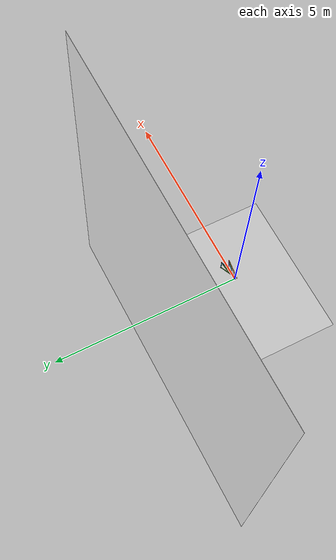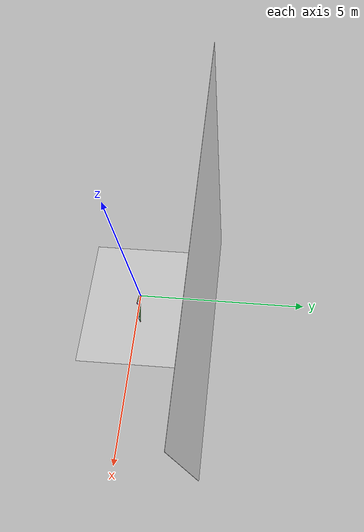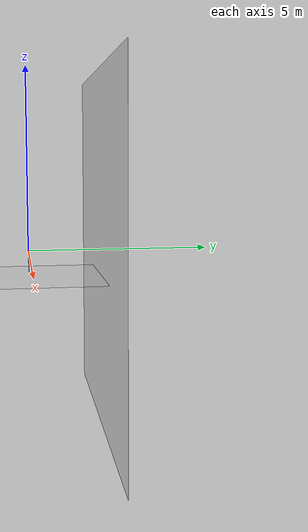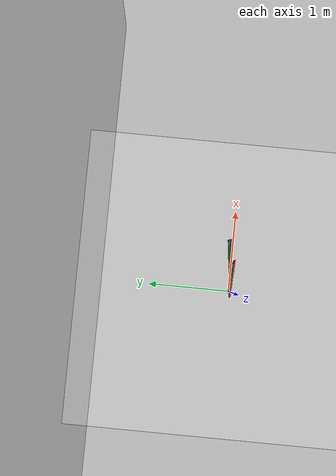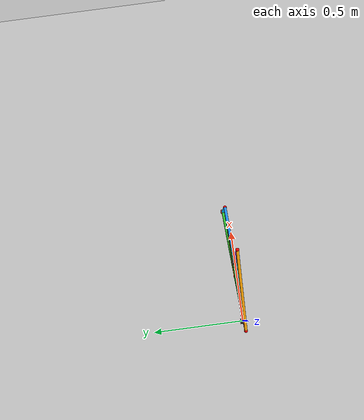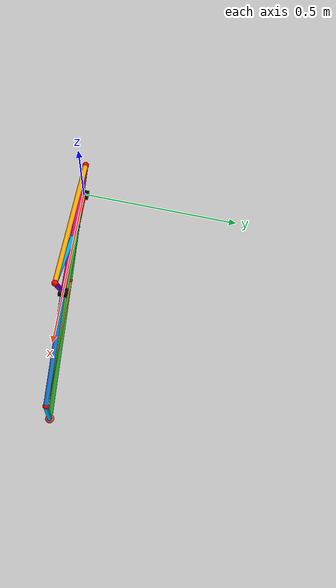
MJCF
<mujoco model="theo_jansen_v2">
    <option gravity="0 0 -9.81" timestep="0.001" iterations="200" tolerance="1e-10"/>
    <visual>
        <global fovy="45"/>
    </visual>
    <worldbody>
        <light pos="0 -2 0" dir="0 1 0" directional="true"/>

        <!-- Ground plane positioned so the foot touches it at the lowest point of its trajectory.
             Foot lowest Z ≈ -0.678, foot sphere radius = 0.015, so ground at -0.693 -->
        <geom name="ground" type="plane" size="2 2 0.1" pos="0 0 -0.693"
              rgba="0.9 0.9 0.9 1" contype="1" conaffinity="1" friction="1 0.005 0.0001"/>

        <!-- White background plane far away -->
        <geom name="white_bg" type="plane" size="5 5 0.1" pos="0 2 0"
              axisangle="1 0 0 90" rgba="1 1 1 1" contype="0" conaffinity="0"/>

        <!-- Fixed-point mount markers (black cylinders) -->
        <geom type="cylinder" pos="0.000000 0.0 0.000000" size="0.015 0.015"
              axisangle="1 0 0 90" rgba="0 0 0 1" contype="0" conaffinity="0"/>
        <geom type="cylinder" pos="0.330000 0.0 0.000000" size="0.015 0.015"
              axisangle="1 0 0 90" rgba="0 0 0 1" contype="0" conaffinity="0"/>

        <!-- ======== CRANK ======== -->
        <body name="crank" pos="0.000000 0.0 0.000000">
            <joint name="joint_crank" type="hinge" pos="0 0 0" axis="0 1 0"
                   damping="0.05" frictionloss="0.0"/>
            <geom name="L1" type="capsule"
                  fromto="0.000000 0.0 0.000000 0.110000 0.0 0.000000"
                  size="0.008" rgba="1 0 0 1" contype="0" conaffinity="0"/>
            <site name="s_P1" pos="0.110000 0.0 0.000000" size="0.01" rgba="1 0 0 1"/>

            <!-- Link L2 (upper coupler) -->
            <body name="link2" pos="0.110000 0.0 0.000000">
                <joint name="joint_link2" type="hinge" pos="0 0 0" axis="0 1 0"
                       damping="0.05" frictionloss="0.0"/>
                <geom name="L2" type="capsule"
                      fromto="0.000000 0.0 0.000000 0.275682 0.0 0.355668"
                      size="0.008" rgba="0 0.75 1 1" contype="0" conaffinity="0"/>
                <site name="s_P2_link2" pos="0.275682 0.0 0.355668" size="0.01" rgba="1 0 0 1"/>
            </body>

            <!-- Link L7 (lower coupler) -->
            <body name="link7" pos="0.110000 0.0 0.000000">
                <joint name="joint_link7" type="hinge" pos="0 0 0" axis="0 1 0"
                       damping="0.05" frictionloss="0.0"/>
                <geom name="L7" type="capsule"
                      fromto="0.000000 0.0 0.000000 0.550455 0.0 -0.251047"
                      size="0.008" rgba="0.2 0.8 0.2 1" contype="0" conaffinity="0"/>
                <site name="s_P5_link7" pos="0.550455 0.0 -0.251047" size="0.01" rgba="1 0 0 1"/>
            </body>
        </body>

        <!-- ======== LOWER ARM ======== -->
        <body name="link8" pos="0.330000 0.0 0.000000">
            <joint name="joint_link8" type="hinge" pos="0 0 0" axis="0 1 0"
                   damping="0.05" frictionloss="0.0"/>
            <geom name="L8" type="capsule"
                  fromto="0.000000 0.0 0.000000 0.330455 0.0 -0.251047"
                  size="0.008" rgba="0.12 0.56 1 1" contype="0" conaffinity="0"/>
            <site name="s_P5_link8" pos="0.330455 0.0 -0.251047" size="0.01" rgba="1 0 0 1"/>

            <!-- FOOT TRIANGLE (links L9, L11, L12) WITH FLIPPED PE -->
            <body name="foot_tri" pos="0.330455 0.0 -0.251047">
                <joint name="joint_foot_tri" type="hinge" pos="0 0 0" axis="0 1 0"
                       damping="0.05" frictionloss="0.0"/>
                <!-- L9: P5 to P6 -->
                <geom name="L9" type="capsule"
                      fromto="0.000000 0.0 0.000000 -0.406250 0.0 0.106588"
                      size="0.008" rgba="0.85 0.65 0.13 1" contype="0" conaffinity="0"/>
                <!-- L11: P5 to PE (corrected downwards) -->
                <geom name="L11" type="capsule"
                      fromto="0.000000 0.0 0.000000 -0.007470 0.0 -0.264895"
                      size="0.008" rgba="0 0.75 1 1" contype="0" conaffinity="0"/>
                <!-- L12: P6 to PE (corrected downwards) -->
                <geom name="L12" type="capsule"
                      fromto="-0.406250 0.0 0.106588 -0.007470 0.0 -0.264895"
                      size="0.008" rgba="0.2 0.8 0.2 1" contype="0" conaffinity="0"/>

                <site name="s_P5_foot" pos="0.000000 0.0 0.000000" size="0.01" rgba="1 0 0 1"/>
                <site name="s_P6_foot" pos="-0.406250 0.0 0.106588" size="0.01" rgba="1 0 0 1"/>
                <site name="s_foot" pos="-0.007470 0.0 -0.264895" size="0.01" rgba="1 0 0 1"/>

                <!-- FOOT CONTACT SPHERE -->
                <geom name="foot_contact" type="sphere"
                      pos="-0.007470 0.0 -0.264895" size="0.015"
                      rgba="1 0.3 0.3 1" contype="1" conaffinity="1"
                      friction="1.0 0.005 0.0001"/>
            </body>
        </body>

        <!-- ======== COUPLER TRIANGLE ======== -->
        <body name="coupler_tri" pos="0.330000 0.0 0.000000">
            <joint name="joint_coupler_tri" type="hinge" pos="0 0 0" axis="0 1 0"
                   damping="0.05" frictionloss="0.0"/>
            <geom name="L3" type="capsule"
                  fromto="0.000000 0.0 0.000000 0.055682 0.0 0.355668"
                  size="0.008" rgba="0.58 0 0.83 1" contype="0" conaffinity="0"/>
            <geom name="L6" type="capsule"
                  fromto="0.000000 0.0 0.000000 -0.385384 0.0 0.153961"
                  size="0.008" rgba="1 0.08 0.58 1" contype="0" conaffinity="0"/>
            <geom name="L5" type="capsule"
                  fromto="0.055682 0.0 0.355668 -0.385384 0.0 0.153961"
                  size="0.008" rgba="1 0.65 0 1" contype="0" conaffinity="0"/>
            <site name="s_P2_tri" pos="0.055682 0.0 0.355668" size="0.01" rgba="1 0 0 1"/>
            <site name="s_P4_tri" pos="-0.385384 0.0 0.153961" size="0.01" rgba="1 0 0 1"/>

            <!-- Link L10 -->
            <body name="link10" pos="-0.385384 0.0 0.153961">
                <joint name="joint_link10" type="hinge" pos="0 0 0" axis="0 1 0"
                       damping="0.05" frictionloss="0.0"/>
                <geom name="L10" type="capsule"
                      fromto="0.000000 0.0 0.000000 0.309589 0.0 -0.298420"
                      size="0.008" rgba="0.2 0.8 0.2 1" contype="0" conaffinity="0"/>
                <site name="s_P6_link10" pos="0.309589 0.0 -0.298420" size="0.01" rgba="1 0 0 1"/>
            </body>
        </body>
    </worldbody>

    <!-- Closed-loop equality constraints -->
    <equality>
        <connect body1="link2" body2="coupler_tri"
                 anchor="0.275682 0.0 0.355668" solref="0.01 1" solimp="0.95 0.99 0.001"/>
        <connect body1="link7" body2="link8"
                 anchor="0.550455 0.0 -0.251047" solref="0.01 1" solimp="0.95 0.99 0.001"/>
        <connect body1="link10" body2="foot_tri"
                 anchor="0.309589 0.0 -0.298420" solref="0.01 1" solimp="0.95 0.99 0.001"/>
    </equality>

    <actuator>
        <general name="motor_crank" joint="joint_crank"
                 gainprm="0" biastype="affine" biasprm="3.14159 0 -1"/>
    </actuator>
</mujoco>
